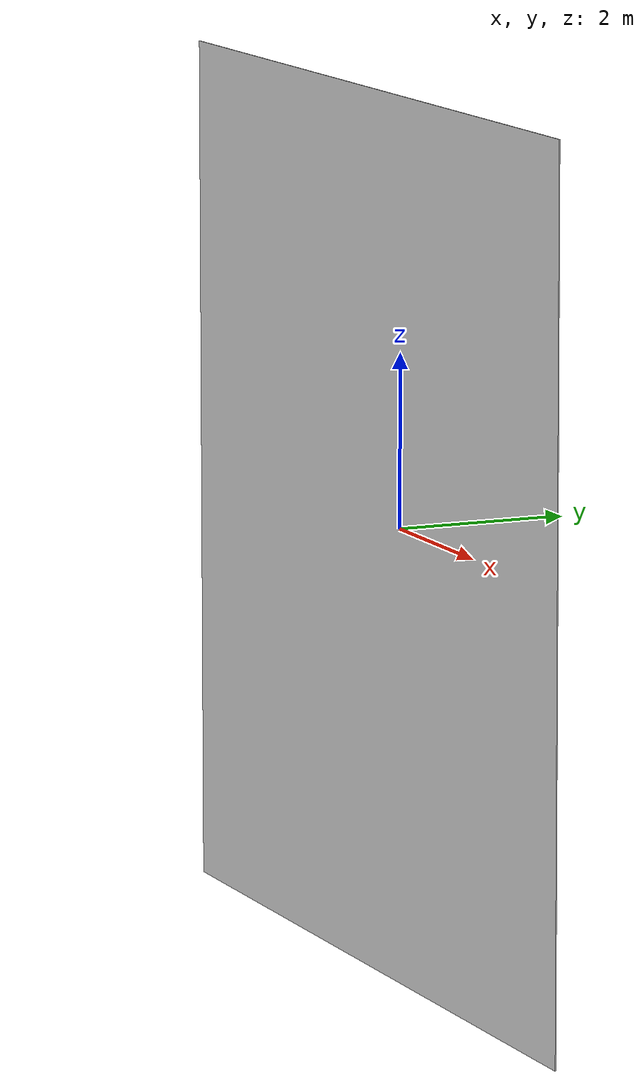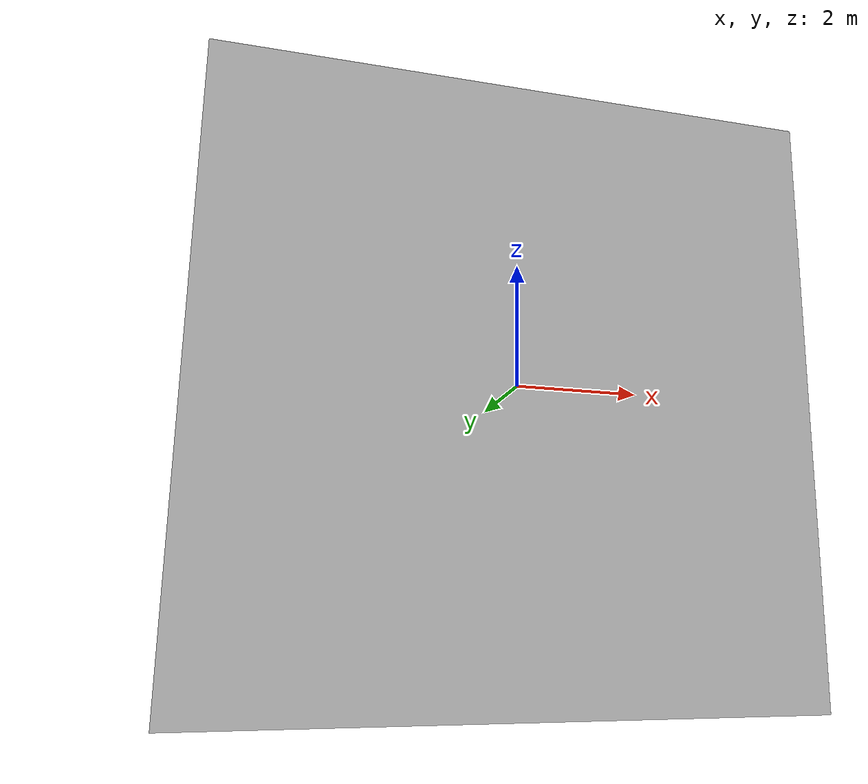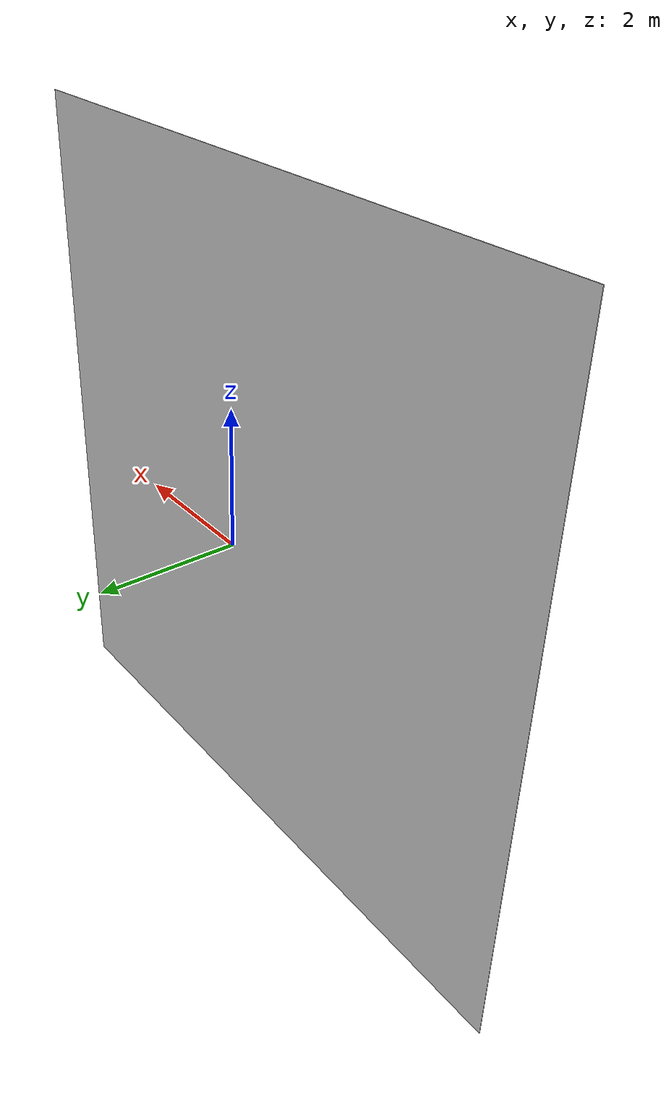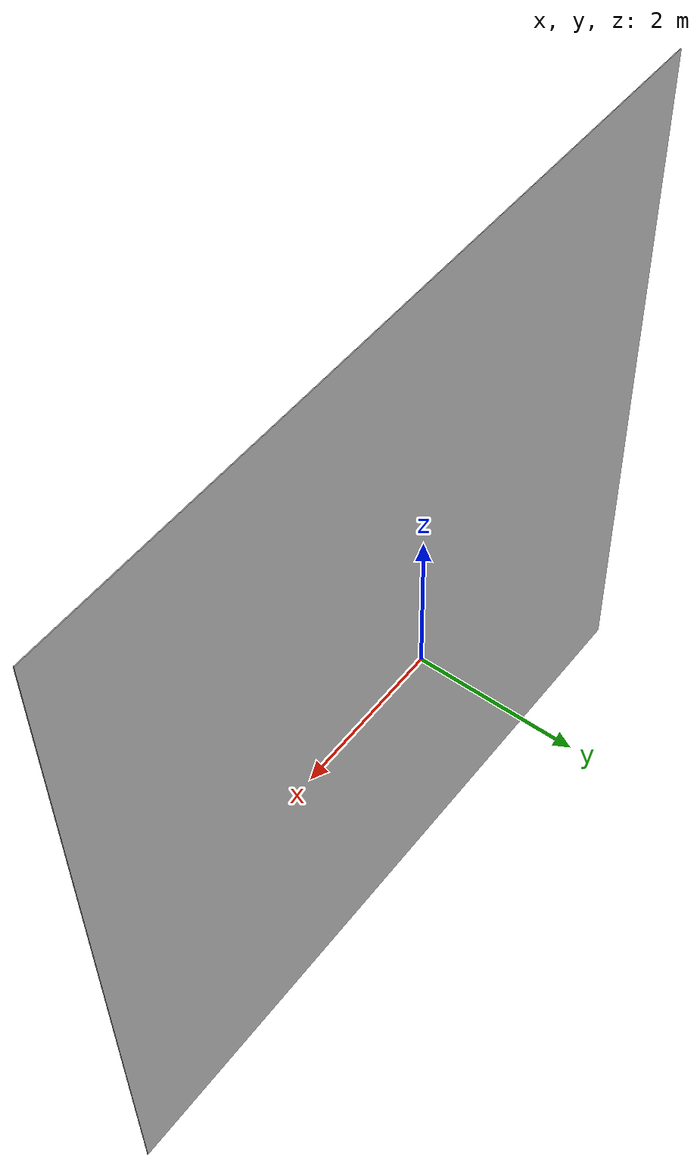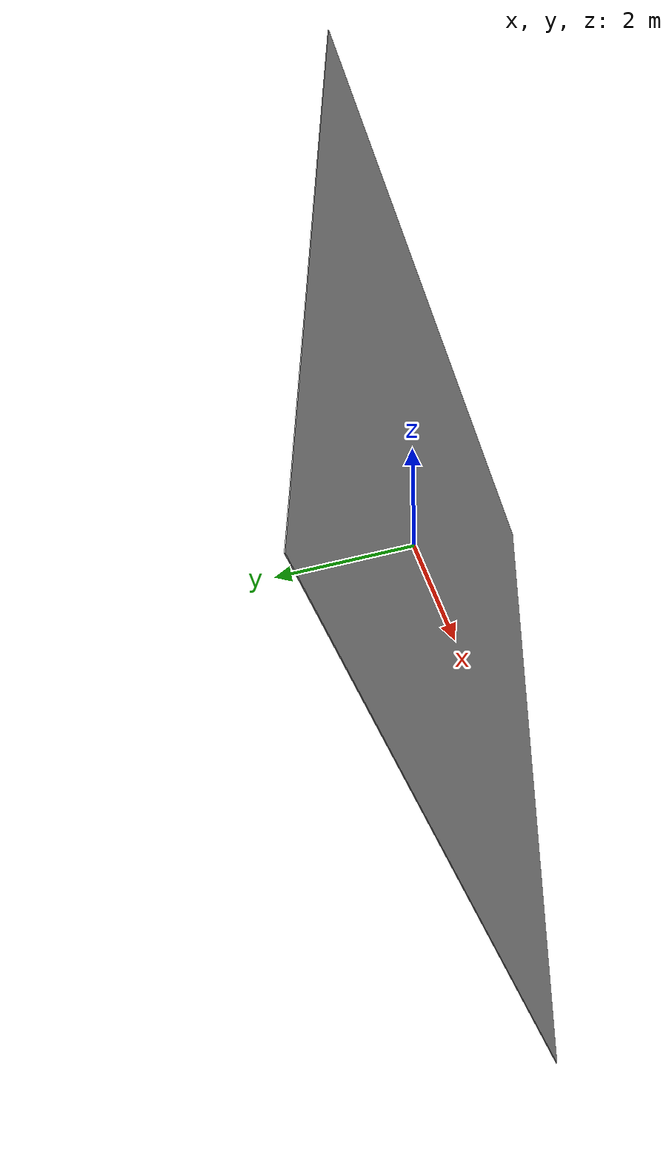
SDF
<?xml version="1.0" ?>
<sdf version="1.7">
  <model name="ground skeleton">
    <static>true</static>
    <link name="ground">
      <pose>0 -0.375 0 0 0 0</pose>
      <visual name="visual 1">
        <pose>0 -0.005 0 0 0 0</pose>
        <geometry>
          <box>
            <size>10 0.01 10</size>
          </box>
        </geometry>
      </visual>
      <collision name="collision 1">
        <pose>0 -0.005 0 0 0 0</pose>
        <geometry>
          <box>
            <size>10 0.01 10</size>
          </box>
        </geometry>
      </collision>
    </link>
  </model>
</sdf>
